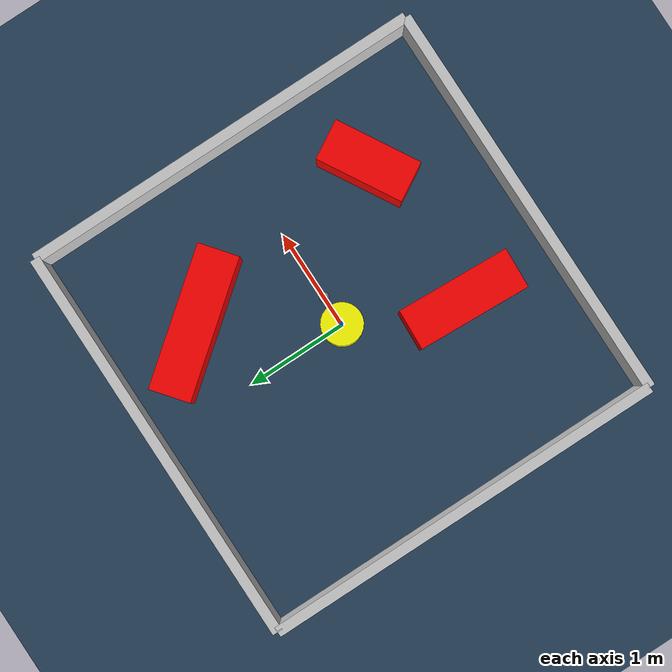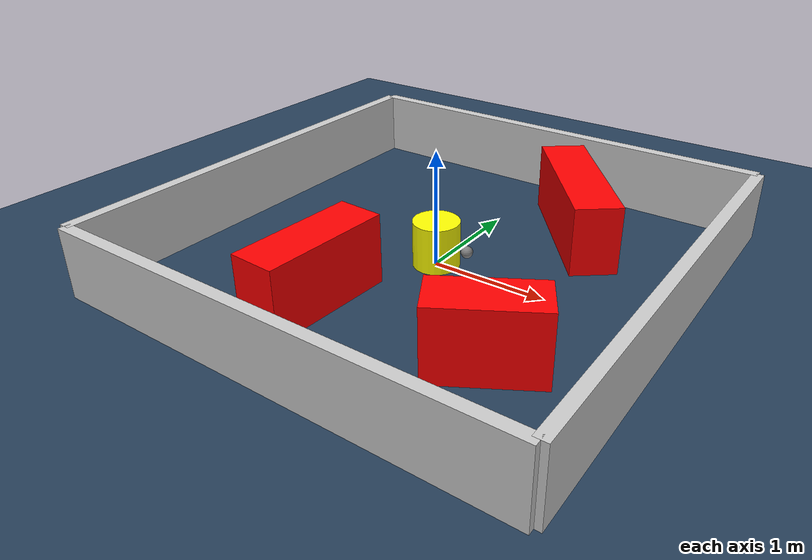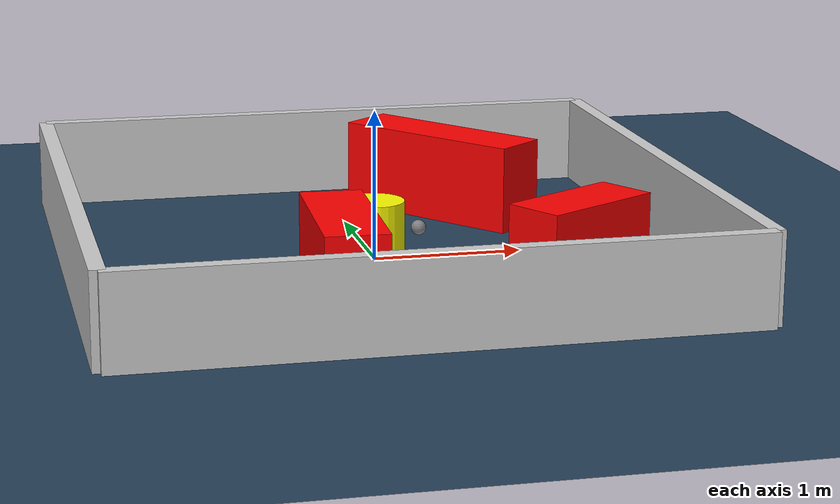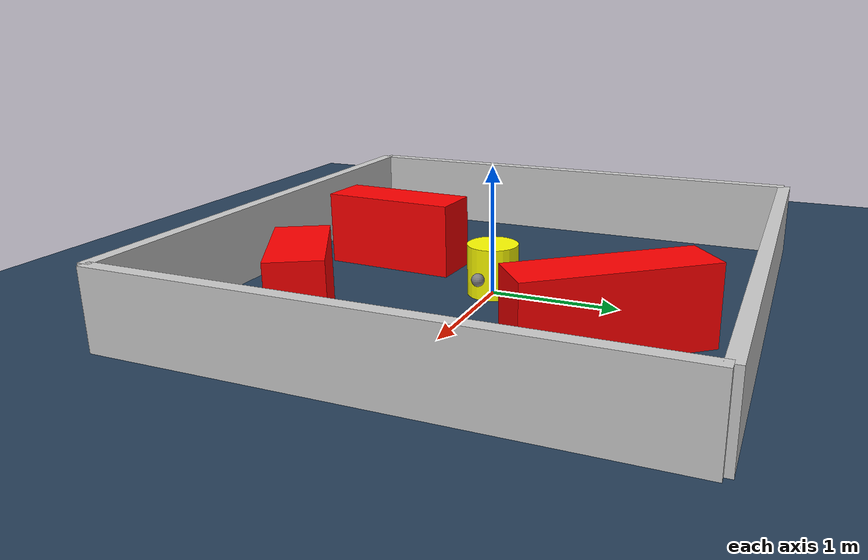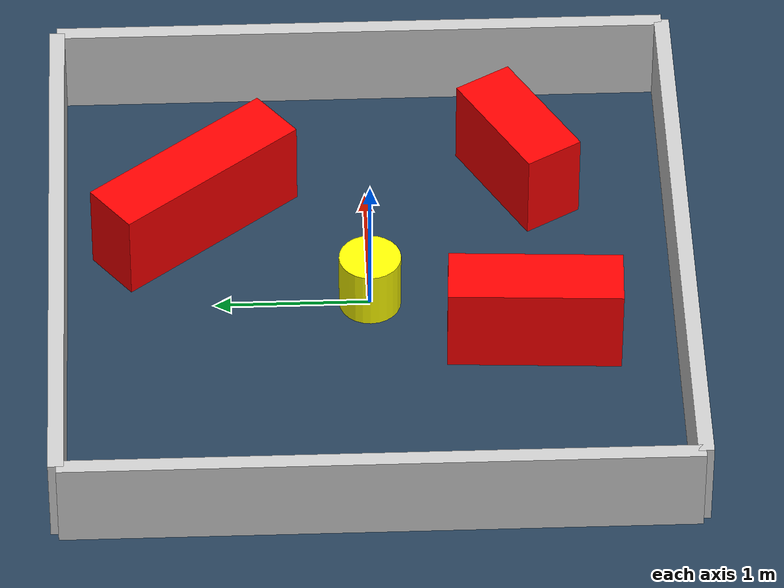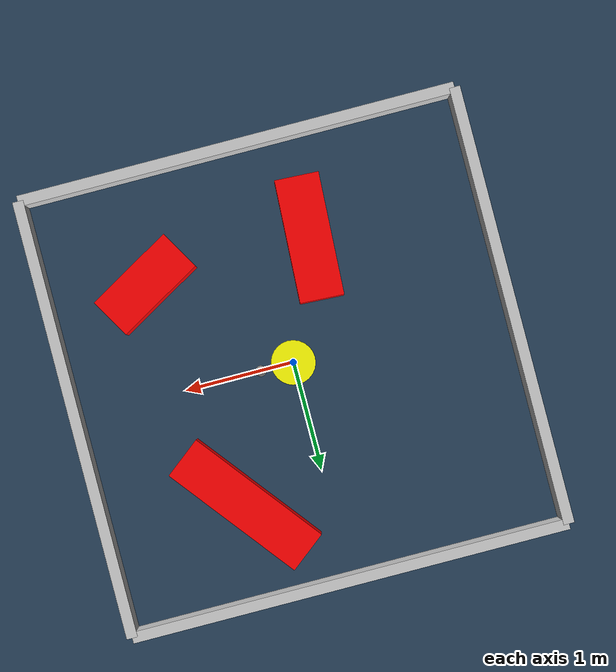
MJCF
<?xml version="1.0" ?>
<mujoco model="generated_environment">
  <option timestep="0.01" integrator="RK4" cone="elliptic"/>
  <default>
    <geom density="1"/>
  </default>
  <asset>
    <texture builtin="gradient" height="3072" rgb1="0.3 0.5 0.7" rgb2="0 0 0" type="skybox" width="512"/>
    <texture builtin="checker" height="300" mark="edge" markrgb="0.8 0.8 0.8" name="groundplane" rgb1="0.2 0.3 0.4" rgb2="0.1 0.2 0.3" type="2d" width="300"/>
    <material name="groundplane" reflectance="0.2" texrepeat="5 5" texture="groundplane" texuniform="true"/>
    <material name="robot" rgba="0.0 1.0 0.0 1"/>
  </asset>
  <worldbody>
    <light dir="0 0 -1" directional="true" pos="0 0 1.5"/>
    <geom condim="4" friction="1.0 0.005 0.001" material="groundplane" name="floor" size="0 0 0.05" type="plane"/>
    <body name="walls">
      <geom name="wall_1" condim="4" pos="-2.0 0.0 0.3" rgba="0.800000011920929 0.800000011920929 0.800000011920929 1.0" size="0.05 2.0 0.3" type="box"/>
      <geom name="wall_2" condim="4" pos="2.0 0.0 0.3" rgba="0.800000011920929 0.800000011920929 0.800000011920929 1.0" size="0.05 2.0 0.3" type="box"/>
      <geom name="wall_3" condim="4" pos="0.0 -2.0 0.3" rgba="0.800000011920929 0.800000011920929 0.800000011920929 1.0" size="2.0 0.05 0.3" type="box"/>
      <geom name="wall_4" condim="4" pos="0.0 2.0 0.3" rgba="0.800000011920929 0.800000011920929 0.800000011920929 1.0" size="2.0 0.05 0.3" type="box"/>
    </body>
    <body name="robot">
      <joint name="joint_x" type="slide" pos="0 0 0" axis="1 0 0"/>
      <joint name="joint_y" type="slide" pos="0 0 0" axis="0 1 0"/>
      <geom name="robot" type="sphere" pos="0.3 0.0 0.2" size="0.05" mass="5." friction="1.0 0.005 0.0001" condim="4" rgba="0.5 0.5 0.5 1.0"/>
      <site name="sensor_ball"/>
    </body>
    <body name="obstacle_movable_1">
      <geom name="obstacle_movable_1" condim="4" pos="0.0 0.0 0.2" euler="0 0 0.0" friction="1.0 0.005 0.001" rgba="1.0 1.0 0.0 1.0" size="0.2 0.2 0.0" type="cylinder" mass="0.1"/>
      <joint type="free"/>
    </body>
    <body name="obstacle_2_static">
      <geom name="obstacle_2_static" condim="4" pos="0.7326965344518577 1.113550492352134 0.3" euler="0 0 128.347220972504" friction="1.0 0.005 0.001" rgba="1 0 0 1" size="0.6968479054006328 0.2 0.3" type="box"/>
    </body>
    <body name="obstacle_3_static">
      <geom name="obstacle_3_static" condim="4" pos="-0.41815487438258203 -1.037007693700669 0.3" euler="0 0 267.1916153439743" friction="1.0 0.005 0.001" rgba="1 0 0 1" size="0.5561083377597158 0.2 0.3" type="box"/>
    </body>
    <body name="obstacle_4_static">
      <geom name="obstacle_4_static" condim="4" pos="1.0968265068688403 -1.0041538829755454 0.3" euler="0 0 210.1422563603052" friction="1.0 0.005 0.001" rgba="1 0 0 1" size="0.4323526242482215 0.2 0.3" type="box"/>
    </body>
  </worldbody>
  <actuator>
    <motor name="actuator_x" joint="joint_x" gear="1" ctrlrange="-1 1"/>
    <motor name="actuator_y" joint="joint_y" gear="1" ctrlrange="-1 1"/>
  </actuator>
</mujoco>
